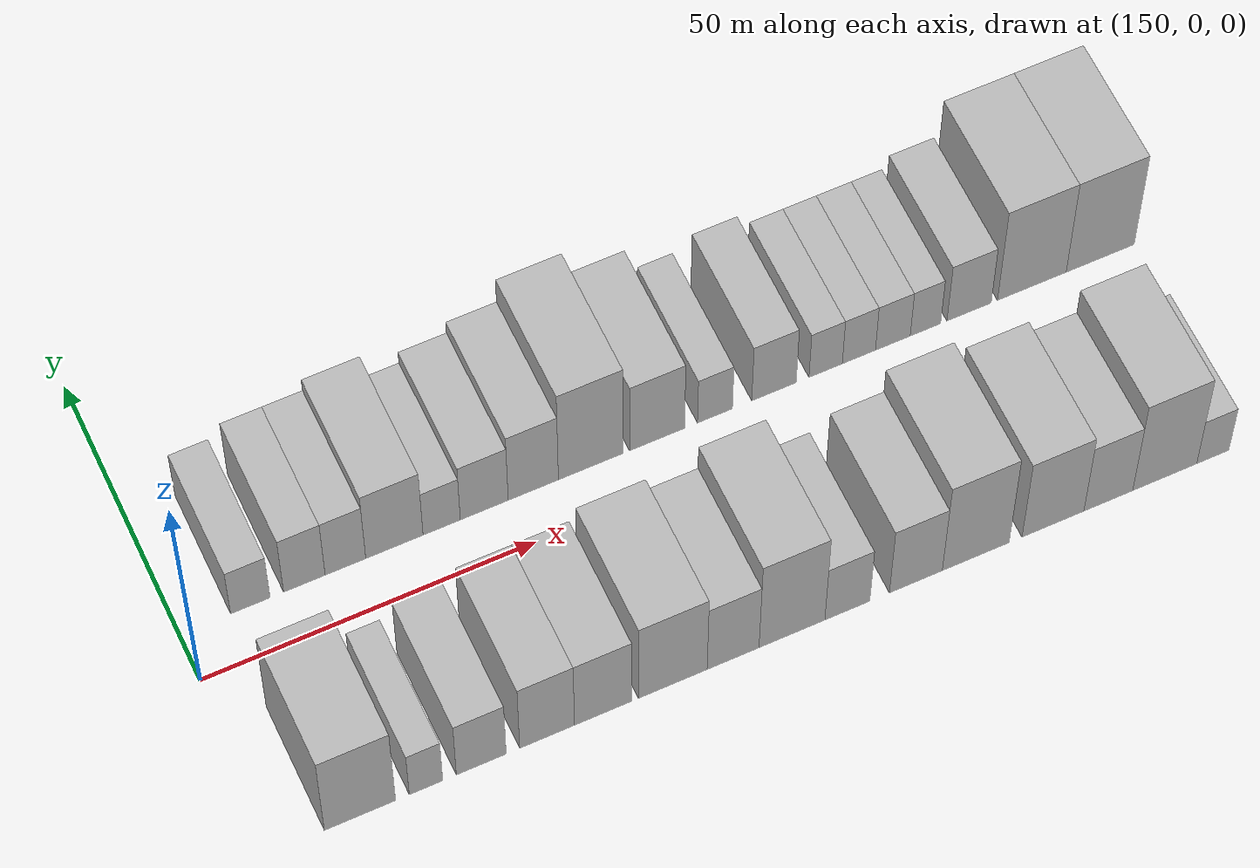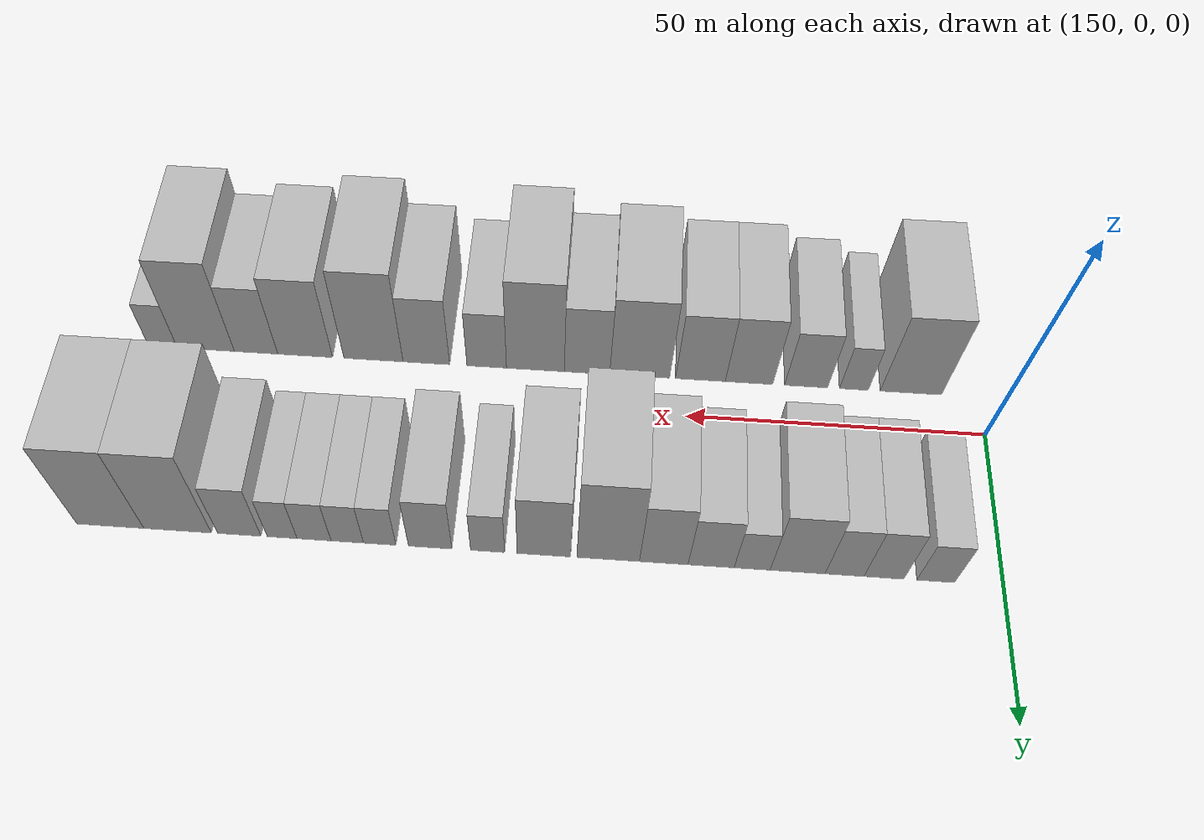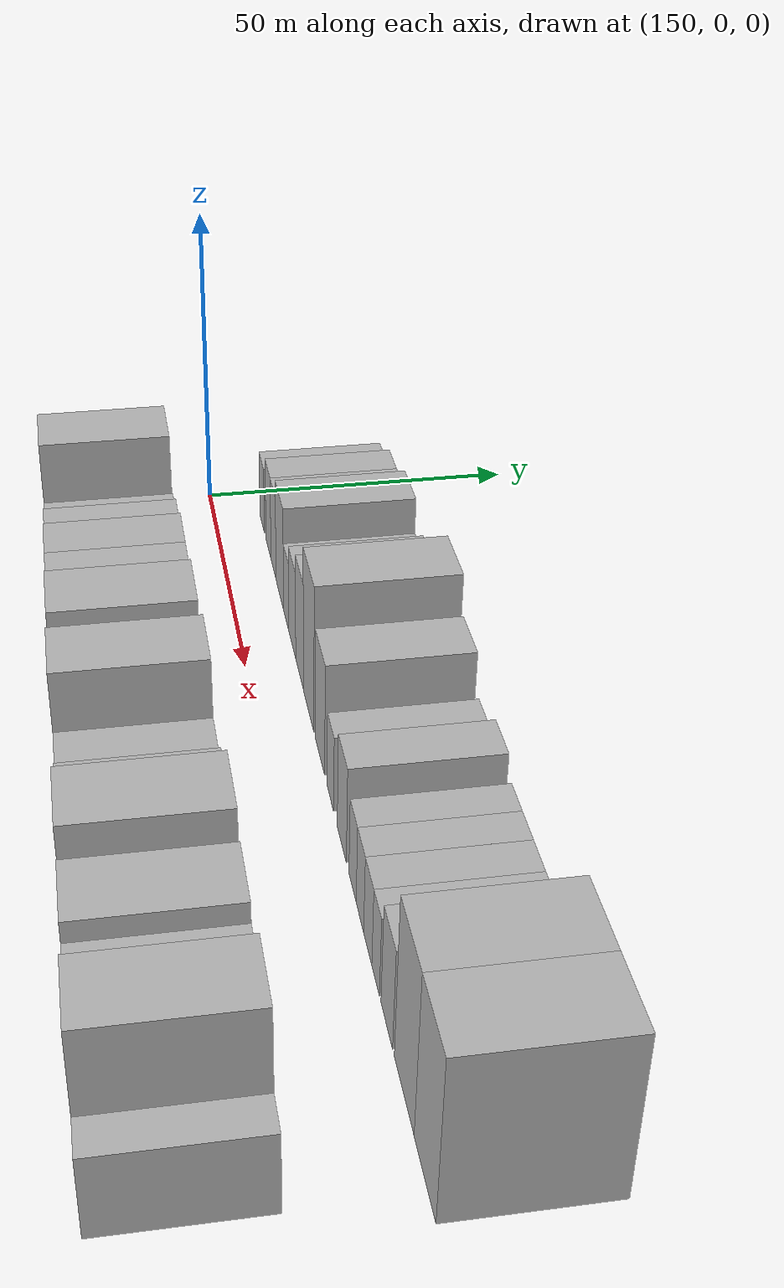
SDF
<sdf version="1.6">
 <world name="default">
  <model name="building_16">
   <static>1</static>
   <pose>160.4955 17.5000 0 0.000000 0.000000 1.570796</pose>
   <link name="link">
    <pose>0 0 6.00 0 0 0</pose>
    <collision name="collision"><geometry><box><size>20.0000 5.8731 12.0000</size></box></geometry></collision>
    <visual name="visual">
     <cast_shadows>0</cast_shadows>
     <geometry><box><size>20.0000 5.8731 12.0000</size></box></geometry>
     <material>
      <script>
       <uri>model://HANNAS_wall/materials/scripts</uri>
       <uri>model://HANNAS_wall/materials/textures</uri>
       <name>vrc/HANNAS_wall</name>
      </script>
     </material>
    </visual>
   </link>
  </model>
  <model name="building_17">
   <static>1</static>
   <pose>168.5329 17.5000 0 0.000000 0.000000 1.570796</pose>
   <link name="link">
    <pose>0 0 7.50 0 0 0</pose>
    <collision name="collision"><geometry><box><size>20.0000 6.2015 15.0000</size></box></geometry></collision>
    <visual name="visual">
     <cast_shadows>0</cast_shadows>
     <geometry><box><size>20.0000 6.2015 15.0000</size></box></geometry>
     <material>
      <script>
       <uri>model://HANNAS_wall/materials/scripts</uri>
       <uri>model://HANNAS_wall/materials/textures</uri>
       <name>vrc/HANNAS_wall</name>
      </script>
     </material>
    </visual>
   </link>
  </model>
  <model name="building_18">
   <static>1</static>
   <pose>174.6682 17.5000 0 0.000000 0.000000 1.570796</pose>
   <link name="link">
    <pose>0 0 7.50 0 0 0</pose>
    <collision name="collision"><geometry><box><size>20.0000 6.0692 15.0000</size></box></geometry></collision>
    <visual name="visual">
     <cast_shadows>0</cast_shadows>
     <geometry><box><size>20.0000 6.0692 15.0000</size></box></geometry>
     <material>
      <script>
       <uri>model://HANNAS_wall/materials/scripts</uri>
       <uri>model://HANNAS_wall/materials/textures</uri>
       <name>vrc/HANNAS_wall</name>
      </script>
     </material>
    </visual>
   </link>
  </model>
  <model name="building_19">
   <static>1</static>
   <pose>182.0090 17.5000 0 0.000000 0.000000 1.570796</pose>
   <link name="link">
    <pose>0 0 9.00 0 0 0</pose>
    <collision name="collision"><geometry><box><size>20.0000 8.6124 18.0000</size></box></geometry></collision>
    <visual name="visual">
     <cast_shadows>0</cast_shadows>
     <geometry><box><size>20.0000 8.6124 18.0000</size></box></geometry>
     <material>
      <script>
       <uri>model://HANNAS_wall/materials/scripts</uri>
       <uri>model://HANNAS_wall/materials/textures</uri>
       <name>vrc/HANNAS_wall</name>
      </script>
     </material>
    </visual>
   </link>
  </model>
  <model name="building_20">
   <static>1</static>
   <pose>189.1239 17.5000 0 0.000000 0.000000 1.570796</pose>
   <link name="link">
    <pose>0 0 6.00 0 0 0</pose>
    <collision name="collision"><geometry><box><size>20.0000 5.6175 12.0000</size></box></geometry></collision>
    <visual name="visual">
     <cast_shadows>0</cast_shadows>
     <geometry><box><size>20.0000 5.6175 12.0000</size></box></geometry>
     <material>
      <script>
       <uri>model://HANNAS_wall/materials/scripts</uri>
       <uri>model://HANNAS_wall/materials/textures</uri>
       <name>vrc/HANNAS_wall</name>
      </script>
     </material>
    </visual>
   </link>
  </model>
  <model name="building_21">
   <static>1</static>
   <pose>195.5637 17.5000 0 0.000000 0.000000 1.570796</pose>
   <link name="link">
    <pose>0 0 7.50 0 0 0</pose>
    <collision name="collision"><geometry><box><size>20.0000 7.2621 15.0000</size></box></geometry></collision>
    <visual name="visual">
     <cast_shadows>0</cast_shadows>
     <geometry><box><size>20.0000 7.2621 15.0000</size></box></geometry>
     <material>
      <script>
       <uri>model://HANNAS_wall/materials/scripts</uri>
       <uri>model://HANNAS_wall/materials/textures</uri>
       <name>vrc/HANNAS_wall</name>
      </script>
     </material>
    </visual>
   </link>
  </model>
  <model name="building_22">
   <static>1</static>
   <pose>203.0123 17.5000 0 0.000000 0.000000 1.570796</pose>
   <link name="link">
    <pose>0 0 9.00 0 0 0</pose>
    <collision name="collision"><geometry><box><size>20.0000 7.6352 18.0000</size></box></geometry></collision>
    <visual name="visual">
     <cast_shadows>0</cast_shadows>
     <geometry><box><size>20.0000 7.6352 18.0000</size></box></geometry>
     <material>
      <script>
       <uri>model://HANNAS_wall/materials/scripts</uri>
       <uri>model://HANNAS_wall/materials/textures</uri>
       <name>vrc/HANNAS_wall</name>
      </script>
     </material>
    </visual>
   </link>
  </model>
  <model name="building_23">
   <static>1</static>
   <pose>211.7698 17.5000 0 0.000000 0.000000 1.570796</pose>
   <link name="link">
    <pose>0 0 12.00 0 0 0</pose>
    <collision name="collision"><geometry><box><size>20.0000 9.8797 24.0000</size></box></geometry></collision>
    <visual name="visual">
     <cast_shadows>0</cast_shadows>
     <geometry><box><size>20.0000 9.8797 24.0000</size></box></geometry>
     <material>
      <script>
       <uri>model://HANNAS_wall/materials/scripts</uri>
       <uri>model://HANNAS_wall/materials/textures</uri>
       <name>vrc/HANNAS_wall</name>
      </script>
     </material>
    </visual>
   </link>
  </model>
  <model name="building_24">
   <static>1</static>
   <pose>221.9413 17.5000 0 0.000000 0.000000 1.570796</pose>
   <link name="link">
    <pose>0 0 9.00 0 0 0</pose>
    <collision name="collision"><geometry><box><size>20.0000 8.4632 18.0000</size></box></geometry></collision>
    <visual name="visual">
     <cast_shadows>0</cast_shadows>
     <geometry><box><size>20.0000 8.4632 18.0000</size></box></geometry>
     <material>
      <script>
       <uri>model://HANNAS_wall/materials/scripts</uri>
       <uri>model://HANNAS_wall/materials/textures</uri>
       <name>vrc/HANNAS_wall</name>
      </script>
     </material>
    </visual>
   </link>
  </model>
  <model name="building_25">
   <static>1</static>
   <pose>230.8725 17.5000 0 0.000000 0.000000 1.570796</pose>
   <link name="link">
    <pose>0 0 6.00 0 0 0</pose>
    <collision name="collision"><geometry><box><size>20.0000 5.3994 12.0000</size></box></geometry></collision>
    <visual name="visual">
     <cast_shadows>0</cast_shadows>
     <geometry><box><size>20.0000 5.3994 12.0000</size></box></geometry>
     <material>
      <script>
       <uri>model://HANNAS_wall/materials/scripts</uri>
       <uri>model://HANNAS_wall/materials/textures</uri>
       <name>vrc/HANNAS_wall</name>
      </script>
     </material>
    </visual>
   </link>
  </model>
  <model name="building_26">
   <static>1</static>
   <pose>240.0294 17.5000 0 0.000000 0.000000 1.570796</pose>
   <link name="link">
    <pose>0 0 7.50 0 0 0</pose>
    <collision name="collision"><geometry><box><size>20.0000 6.9145 15.0000</size></box></geometry></collision>
    <visual name="visual">
     <cast_shadows>0</cast_shadows>
     <geometry><box><size>20.0000 6.9145 15.0000</size></box></geometry>
     <material>
      <script>
       <uri>model://HANNAS_wall/materials/scripts</uri>
       <uri>model://HANNAS_wall/materials/textures</uri>
       <name>vrc/HANNAS_wall</name>
      </script>
     </material>
    </visual>
   </link>
  </model>
  <model name="building_27">
   <static>1</static>
   <pose>248.0906 17.5000 0 0.000000 0.000000 1.570796</pose>
   <link name="link">
    <pose>0 0 6.00 0 0 0</pose>
    <collision name="collision"><geometry><box><size>20.0000 5.2079 12.0000</size></box></geometry></collision>
    <visual name="visual">
     <cast_shadows>0</cast_shadows>
     <geometry><box><size>20.0000 5.2079 12.0000</size></box></geometry>
     <material>
      <script>
       <uri>model://HANNAS_wall/materials/scripts</uri>
       <uri>model://HANNAS_wall/materials/textures</uri>
       <name>vrc/HANNAS_wall</name>
      </script>
     </material>
    </visual>
   </link>
  </model>
  <model name="building_28">
   <static>1</static>
   <pose>253.2915 17.5000 0 0.000000 0.000000 1.570796</pose>
   <link name="link">
    <pose>0 0 6.00 0 0 0</pose>
    <collision name="collision"><geometry><box><size>20.0000 5.1938 12.0000</size></box></geometry></collision>
    <visual name="visual">
     <cast_shadows>0</cast_shadows>
     <geometry><box><size>20.0000 5.1938 12.0000</size></box></geometry>
     <material>
      <script>
       <uri>model://HANNAS_wall/materials/scripts</uri>
       <uri>model://HANNAS_wall/materials/textures</uri>
       <name>vrc/HANNAS_wall</name>
      </script>
     </material>
    </visual>
   </link>
  </model>
  <model name="building_29">
   <static>1</static>
   <pose>258.6236 17.5000 0 0.000000 0.000000 1.570796</pose>
   <link name="link">
    <pose>0 0 6.00 0 0 0</pose>
    <collision name="collision"><geometry><box><size>20.0000 5.4703 12.0000</size></box></geometry></collision>
    <visual name="visual">
     <cast_shadows>0</cast_shadows>
     <geometry><box><size>20.0000 5.4703 12.0000</size></box></geometry>
     <material>
      <script>
       <uri>model://HANNAS_wall/materials/scripts</uri>
       <uri>model://HANNAS_wall/materials/textures</uri>
       <name>vrc/HANNAS_wall</name>
      </script>
     </material>
    </visual>
   </link>
  </model>
  <model name="building_30">
   <static>1</static>
   <pose>263.7589 17.5000 0 0.000000 0.000000 1.570796</pose>
   <link name="link">
    <pose>0 0 6.00 0 0 0</pose>
    <collision name="collision"><geometry><box><size>20.0000 4.8003 12.0000</size></box></geometry></collision>
    <visual name="visual">
     <cast_shadows>0</cast_shadows>
     <geometry><box><size>20.0000 4.8003 12.0000</size></box></geometry>
     <material>
      <script>
       <uri>model://HANNAS_wall/materials/scripts</uri>
       <uri>model://HANNAS_wall/materials/textures</uri>
       <name>vrc/HANNAS_wall</name>
      </script>
     </material>
    </visual>
   </link>
  </model>
  <model name="building_31">
   <static>1</static>
   <pose>270.6630 17.5000 0 0.000000 0.000000 1.570796</pose>
   <link name="link">
    <pose>0 0 7.50 0 0 0</pose>
    <collision name="collision"><geometry><box><size>20.0000 7.0080 15.0000</size></box></geometry></collision>
    <visual name="visual">
     <cast_shadows>0</cast_shadows>
     <geometry><box><size>20.0000 7.0080 15.0000</size></box></geometry>
     <material>
      <script>
       <uri>model://HANNAS_wall/materials/scripts</uri>
       <uri>model://HANNAS_wall/materials/textures</uri>
       <name>vrc/HANNAS_wall</name>
      </script>
     </material>
    </visual>
   </link>
  </model>
  <model name="building_32">
   <static>1</static>
   <pose>280.6449 17.5000 0 0.000000 0.000000 1.570796</pose>
   <link name="link">
    <pose>0 0 12.00 0 0 0</pose>
    <collision name="collision"><geometry><box><size>20.0000 10.9557 24.0000</size></box></geometry></collision>
    <visual name="visual">
     <cast_shadows>0</cast_shadows>
     <geometry><box><size>20.0000 10.9557 24.0000</size></box></geometry>
     <material>
      <script>
       <uri>model://HANNAS_wall/materials/scripts</uri>
       <uri>model://HANNAS_wall/materials/textures</uri>
       <name>vrc/HANNAS_wall</name>
      </script>
     </material>
    </visual>
   </link>
  </model>
  <model name="building_33">
   <static>1</static>
   <pose>291.5715 17.5000 0 0.000000 0.000000 1.570796</pose>
   <link name="link">
    <pose>0 0 12.00 0 0 0</pose>
    <collision name="collision"><geometry><box><size>20.0000 10.8976 24.0000</size></box></geometry></collision>
    <visual name="visual">
     <cast_shadows>0</cast_shadows>
     <geometry><box><size>20.0000 10.8976 24.0000</size></box></geometry>
     <material>
      <script>
       <uri>model://HANNAS_wall/materials/scripts</uri>
       <uri>model://HANNAS_wall/materials/textures</uri>
       <name>vrc/HANNAS_wall</name>
      </script>
     </material>
    </visual>
   </link>
  </model>
  <model name="building_50">
   <static>1</static>
   <pose>161.7617 -17.5000 0 0.000000 0.000000 1.570796</pose>
   <link name="link">
    <pose>0 0 10.50 0 0 0</pose>
    <collision name="collision"><geometry><box><size>20.0000 10.3857 21.0000</size></box></geometry></collision>
    <visual name="visual">
     <cast_shadows>0</cast_shadows>
     <geometry><box><size>20.0000 10.3857 21.0000</size></box></geometry>
     <material>
      <script>
       <uri>model://HANNAS_wall/materials/scripts</uri>
       <uri>model://HANNAS_wall/materials/textures</uri>
       <name>vrc/HANNAS_wall</name>
      </script>
     </material>
    </visual>
   </link>
  </model>
  <model name="building_51">
   <static>1</static>
   <pose>171.4045 -17.5000 0 0.000000 0.000000 1.570796</pose>
   <link name="link">
    <pose>0 0 6.00 0 0 0</pose>
    <collision name="collision"><geometry><box><size>20.0000 4.8998 12.0000</size></box></geometry></collision>
    <visual name="visual">
     <cast_shadows>0</cast_shadows>
     <geometry><box><size>20.0000 4.8998 12.0000</size></box></geometry>
     <material>
      <script>
       <uri>model://HANNAS_wall/materials/scripts</uri>
       <uri>model://HANNAS_wall/materials/textures</uri>
       <name>vrc/HANNAS_wall</name>
      </script>
     </material>
    </visual>
   </link>
  </model>
  <model name="building_52">
   <static>1</static>
   <pose>179.5244 -17.5000 0 0.000000 0.000000 1.570796</pose>
   <link name="link">
    <pose>0 0 7.50 0 0 0</pose>
    <collision name="collision"><geometry><box><size>20.0000 7.3400 15.0000</size></box></geometry></collision>
    <visual name="visual">
     <cast_shadows>0</cast_shadows>
     <geometry><box><size>20.0000 7.3400 15.0000</size></box></geometry>
     <material>
      <script>
       <uri>model://HANNAS_wall/materials/scripts</uri>
       <uri>model://HANNAS_wall/materials/textures</uri>
       <name>vrc/HANNAS_wall</name>
      </script>
     </material>
    </visual>
   </link>
  </model>
  <model name="building_53">
   <static>1</static>
   <pose>189.2536 -17.5000 0 0.000000 0.000000 1.570796</pose>
   <link name="link">
    <pose>0 0 9.00 0 0 0</pose>
    <collision name="collision"><geometry><box><size>20.0000 8.1184 18.0000</size></box></geometry></collision>
    <visual name="visual">
     <cast_shadows>0</cast_shadows>
     <geometry><box><size>20.0000 8.1184 18.0000</size></box></geometry>
     <material>
      <script>
       <uri>model://HANNAS_wall/materials/scripts</uri>
       <uri>model://HANNAS_wall/materials/textures</uri>
       <name>vrc/HANNAS_wall</name>
      </script>
     </material>
    </visual>
   </link>
  </model>
  <model name="building_54">
   <static>1</static>
   <pose>197.5717 -17.5000 0 0.000000 0.000000 1.570796</pose>
   <link name="link">
    <pose>0 0 9.00 0 0 0</pose>
    <collision name="collision"><geometry><box><size>20.0000 8.5179 18.0000</size></box></geometry></collision>
    <visual name="visual">
     <cast_shadows>0</cast_shadows>
     <geometry><box><size>20.0000 8.5179 18.0000</size></box></geometry>
     <material>
      <script>
       <uri>model://HANNAS_wall/materials/scripts</uri>
       <uri>model://HANNAS_wall/materials/textures</uri>
       <name>vrc/HANNAS_wall</name>
      </script>
     </material>
    </visual>
   </link>
  </model>
  <model name="building_55">
   <static>1</static>
   <pose>207.9827 -17.5000 0 0.000000 0.000000 1.570796</pose>
   <link name="link">
    <pose>0 0 10.50 0 0 0</pose>
    <collision name="collision"><geometry><box><size>20.0000 10.3041 21.0000</size></box></geometry></collision>
    <visual name="visual">
     <cast_shadows>0</cast_shadows>
     <geometry><box><size>20.0000 10.3041 21.0000</size></box></geometry>
     <material>
      <script>
       <uri>model://HANNAS_wall/materials/scripts</uri>
       <uri>model://HANNAS_wall/materials/textures</uri>
       <name>vrc/HANNAS_wall</name>
      </script>
     </material>
    </visual>
   </link>
  </model>
  <model name="building_56">
   <static>1</static>
   <pose>217.0427 -17.5000 0 0.000000 0.000000 1.570796</pose>
   <link name="link">
    <pose>0 0 9.00 0 0 0</pose>
    <collision name="collision"><geometry><box><size>20.0000 7.8159 18.0000</size></box></geometry></collision>
    <visual name="visual">
     <cast_shadows>0</cast_shadows>
     <geometry><box><size>20.0000 7.8159 18.0000</size></box></geometry>
     <material>
      <script>
       <uri>model://HANNAS_wall/materials/scripts</uri>
       <uri>model://HANNAS_wall/materials/textures</uri>
       <name>vrc/HANNAS_wall</name>
      </script>
     </material>
    </visual>
   </link>
  </model>
  <model name="building_57">
   <static>1</static>
   <pose>225.9451 -17.5000 0 0.000000 0.000000 1.570796</pose>
   <link name="link">
    <pose>0 0 12.00 0 0 0</pose>
    <collision name="collision"><geometry><box><size>20.0000 9.9888 24.0000</size></box></geometry></collision>
    <visual name="visual">
     <cast_shadows>0</cast_shadows>
     <geometry><box><size>20.0000 9.9888 24.0000</size></box></geometry>
     <material>
      <script>
       <uri>model://HANNAS_wall/materials/scripts</uri>
       <uri>model://HANNAS_wall/materials/textures</uri>
       <name>vrc/HANNAS_wall</name>
      </script>
     </material>
    </visual>
   </link>
  </model>
  <model name="building_58">
   <static>1</static>
   <pose>234.3586 -17.5000 0 0.000000 0.000000 1.570796</pose>
   <link name="link">
    <pose>0 0 7.50 0 0 0</pose>
    <collision name="collision"><geometry><box><size>20.0000 6.8383 15.0000</size></box></geometry></collision>
    <visual name="visual">
     <cast_shadows>0</cast_shadows>
     <geometry><box><size>20.0000 6.8383 15.0000</size></box></geometry>
     <material>
      <script>
       <uri>model://HANNAS_wall/materials/scripts</uri>
       <uri>model://HANNAS_wall/materials/textures</uri>
       <name>vrc/HANNAS_wall</name>
      </script>
     </material>
    </visual>
   </link>
  </model>
  <model name="building_59">
   <static>1</static>
   <pose>244.8322 -17.5000 0 0.000000 0.000000 1.570796</pose>
   <link name="link">
    <pose>0 0 9.00 0 0 0</pose>
    <collision name="collision"><geometry><box><size>20.0000 8.1090 18.0000</size></box></geometry></collision>
    <visual name="visual">
     <cast_shadows>0</cast_shadows>
     <geometry><box><size>20.0000 8.1090 18.0000</size></box></geometry>
     <material>
      <script>
       <uri>model://HANNAS_wall/materials/scripts</uri>
       <uri>model://HANNAS_wall/materials/textures</uri>
       <name>vrc/HANNAS_wall</name>
      </script>
     </material>
    </visual>
   </link>
  </model>
  <model name="building_60">
   <static>1</static>
   <pose>254.0389 -17.5000 0 0.000000 0.000000 1.570796</pose>
   <link name="link">
    <pose>0 0 12.00 0 0 0</pose>
    <collision name="collision"><geometry><box><size>20.0000 10.3044 24.0000</size></box></geometry></collision>
    <visual name="visual">
     <cast_shadows>0</cast_shadows>
     <geometry><box><size>20.0000 10.3044 24.0000</size></box></geometry>
     <material>
      <script>
       <uri>model://HANNAS_wall/materials/scripts</uri>
       <uri>model://HANNAS_wall/materials/textures</uri>
       <name>vrc/HANNAS_wall</name>
      </script>
     </material>
    </visual>
   </link>
  </model>
  <model name="building_61">
   <static>1</static>
   <pose>265.9909 -17.5000 0 0.000000 0.000000 1.570796</pose>
   <link name="link">
    <pose>0 0 10.50 0 0 0</pose>
    <collision name="collision"><geometry><box><size>20.0000 9.5996 21.0000</size></box></geometry></collision>
    <visual name="visual">
     <cast_shadows>0</cast_shadows>
     <geometry><box><size>20.0000 9.5996 21.0000</size></box></geometry>
     <material>
      <script>
       <uri>model://HANNAS_wall/materials/scripts</uri>
       <uri>model://HANNAS_wall/materials/textures</uri>
       <name>vrc/HANNAS_wall</name>
      </script>
     </material>
    </visual>
   </link>
  </model>
  <model name="building_62">
   <static>1</static>
   <pose>274.6009 -17.5000 0 0.000000 0.000000 1.570796</pose>
   <link name="link">
    <pose>0 0 9.00 0 0 0</pose>
    <collision name="collision"><geometry><box><size>20.0000 7.6203 18.0000</size></box></geometry></collision>
    <visual name="visual">
     <cast_shadows>0</cast_shadows>
     <geometry><box><size>20.0000 7.6203 18.0000</size></box></geometry>
     <material>
      <script>
       <uri>model://HANNAS_wall/materials/scripts</uri>
       <uri>model://HANNAS_wall/materials/textures</uri>
       <name>vrc/HANNAS_wall</name>
      </script>
     </material>
    </visual>
   </link>
  </model>
  <model name="building_63">
   <static>1</static>
   <pose>283.4359 -17.5000 0 0.000000 0.000000 1.570796</pose>
   <link name="link">
    <pose>0 0 12.00 0 0 0</pose>
    <collision name="collision"><geometry><box><size>20.0000 10.0497 24.0000</size></box></geometry></collision>
    <visual name="visual">
     <cast_shadows>0</cast_shadows>
     <geometry><box><size>20.0000 10.0497 24.0000</size></box></geometry>
     <material>
      <script>
       <uri>model://HANNAS_wall/materials/scripts</uri>
       <uri>model://HANNAS_wall/materials/textures</uri>
       <name>vrc/HANNAS_wall</name>
      </script>
     </material>
    </visual>
   </link>
  </model>
  <model name="building_64">
   <static>1</static>
   <pose>290.9899 -17.5000 0 0.000000 0.000000 1.570796</pose>
   <link name="link">
    <pose>0 0 6.00 0 0 0</pose>
    <collision name="collision"><geometry><box><size>20.0000 5.0582 12.0000</size></box></geometry></collision>
    <visual name="visual">
     <cast_shadows>0</cast_shadows>
     <geometry><box><size>20.0000 5.0582 12.0000</size></box></geometry>
     <material>
      <script>
       <uri>model://HANNAS_wall/materials/scripts</uri>
       <uri>model://HANNAS_wall/materials/textures</uri>
       <name>vrc/HANNAS_wall</name>
      </script>
     </material>
    </visual>
   </link>
  </model>
 </world>
</sdf>
